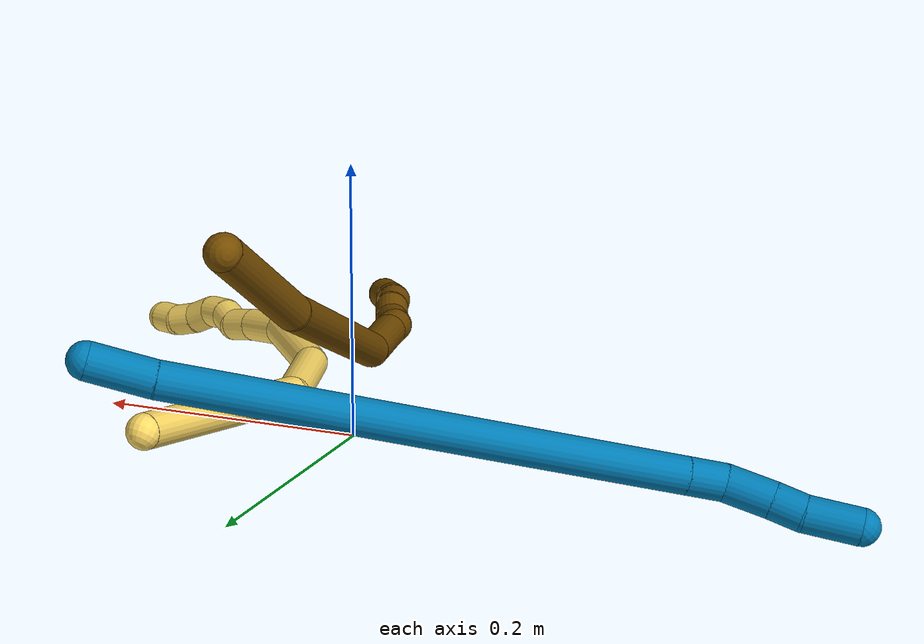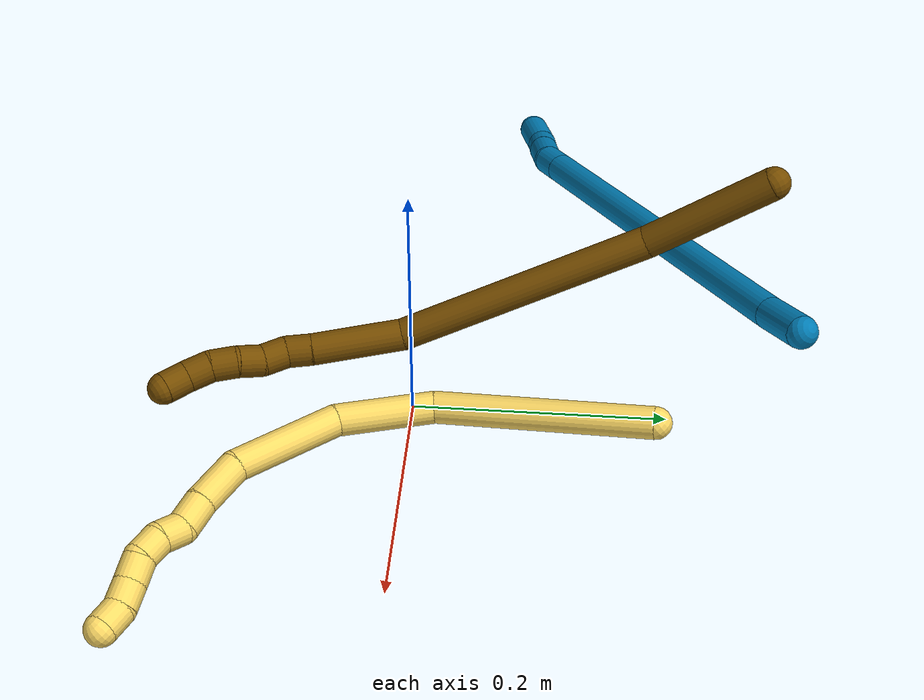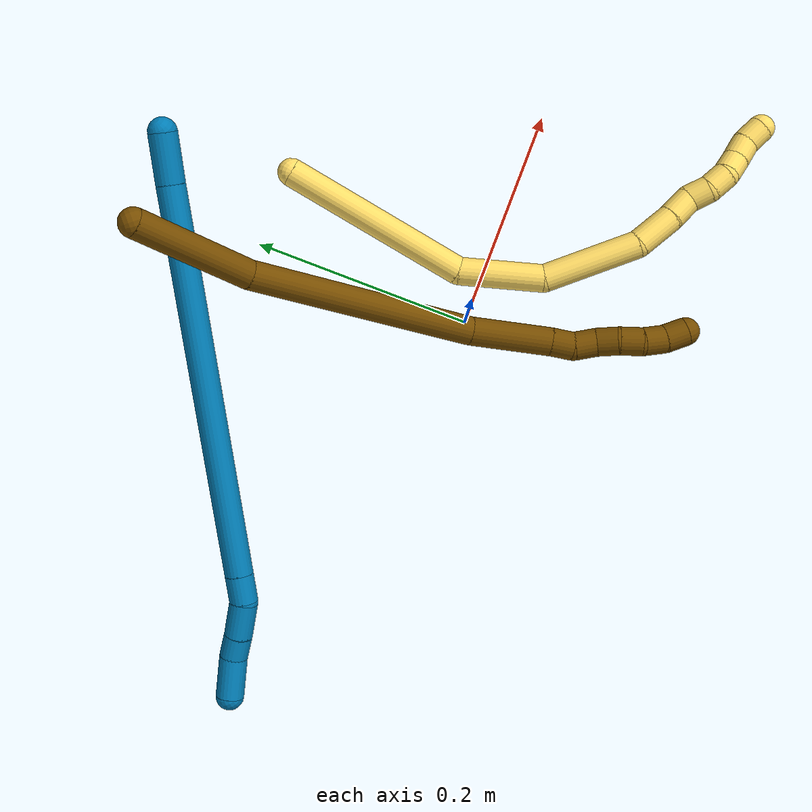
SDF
<sdf version="1.7">
 <world name="default">
  <model name="photoneo_s_sensor">
   <static>1</static>
   <pose>0 0 2 1.57079 1.57079 3.14159</pose>
   <link name="link">
    <inertial><mass>0.1</mass></inertial>
    <sensor name="sensor" type="depth">
     <update_rate>30</update_rate>
     <camera>
      <horizontal_fov>1.22</horizontal_fov>
      <image><width>1920</width><height>1200</height><format>B8G8R8</format></image>
      <clip><near>0.1</near><far>4</far></clip>
      <depth_camera><output>points</output></depth_camera>
     </camera>
     <plugin name="camera_plugin" filename="libgazebo_ros_depth_camera.so">
      <baseline>0.2</baseline>
      <alwaysOn>1</alwaysOn>
      <updateRate>0.0</updateRate>
      <cameraName>camera_ir</cameraName>
      <imageTopicName>/camera/color/image_raw</imageTopicName>
      <cameraInfoTopicName>/camera/color/camera_info</cameraInfoTopicName>
      <depthImageTopicName>/camera/depth/image_raw</depthImageTopicName>
      <depthImageCameraInfoTopicName>/camera/depth/camera_info</depthImageCameraInfoTopicName>
      <pointCloudTopicName>/camera/depth/points</pointCloudTopicName>
      <frameName>fr_optical</frameName>
      <pointCloudCutoff>0.1</pointCloudCutoff>
      <pointCloudCutoffMax>2.0</pointCloudCutoffMax>
      <distortionK1>0</distortionK1>
      <distortionK2>0</distortionK2>
      <distortionK3>0</distortionK3>
      <distortionT1>0</distortionT1>
      <distortionT2>0</distortionT2>
      <CxPrime>0</CxPrime>
      <Cx>0</Cx>
      <Cy>0</Cy>
      <focalLength>0</focalLength>
      <hackBaseline>0</hackBaseline>
     </plugin>
    </sensor>
   </link>
  </model>
  <model name="bin">
   <static>1</static>
   <link name="bottom">
    <collision name="collision-bottom">
     <pose>0 0 -0.01 0 -0 0</pose>
     <geometry><box><size>0.8 0.6 0.02</size></box></geometry>
     <surface>
      <friction><ode><mu>100</mu><mu2>100</mu2></ode></friction>
      <contact><collide_bitmask>65535</collide_bitmask></contact>
     </surface>
    </collision>
   </link>
   <link name="west_wall">
    <collision name="collision-west_wall">
     <pose>-0.41 0 0.1 0 -0 0</pose>
     <geometry><box><size>0.02 0.6 0.2</size></box></geometry>
     <surface>
      <friction><ode><mu>100</mu><mu2>100</mu2></ode></friction>
      <contact><collide_bitmask>65535</collide_bitmask></contact>
     </surface>
    </collision>
   </link>
   <link name="east_wall">
    <collision name="collision-east_wall">
     <pose>0.41 0 0.1 0 -0 0</pose>
     <geometry><box><size>0.02 0.6 0.2</size></box></geometry>
     <surface>
      <friction><ode><mu>100</mu><mu2>100</mu2></ode></friction>
      <contact><collide_bitmask>65535</collide_bitmask></contact>
     </surface>
    </collision>
   </link>
   <link name="south_wall">
    <collision name="collision-south_wall">
     <pose>0 -0.31 0.1 0 -0 0</pose>
     <geometry><box><size>0.8 0.02 0.2</size></box></geometry>
     <surface>
      <friction><ode><mu>100</mu><mu2>100</mu2></ode></friction>
      <contact><collide_bitmask>65535</collide_bitmask></contact>
     </surface>
    </collision>
   </link>
   <link name="north_wall">
    <collision name="collision-north_wall">
     <pose>0 0.31 0.1 0 -0 0</pose>
     <geometry><box><size>0.8 0.02 0.2</size></box></geometry>
     <surface>
      <friction><ode><mu>100</mu><mu2>100</mu2></ode></friction>
      <contact><collide_bitmask>65535</collide_bitmask></contact>
     </surface>
    </collision>
   </link>
  </model>
  <model name="5">
   <static>0</static>
   <link name="5">
    <collision name="collision-cylinder-e_1_1_4">
     <pose>-0.020936 -0.067035 0.048062 0.948774 -0.248572 -0.128127</pose>
     <geometry><cylinder><radius>0.0125</radius><length>0.1702</length></cylinder></geometry>
     <surface>
      <friction><ode><mu>1.16</mu><mu2>1.16</mu2><slip1>0</slip1><slip2>0</slip2></ode></friction>
      <contact><ode><kp>1e+06</kp><kd>1</kd><max_vel>0</max_vel><min_depth>0.001</min_depth></ode></contact>
     </surface>
    </collision>
    <visual name="visual-cylinder-e_1_1_4">
     <pose>-0.020936 -0.067035 0.048062 0.948774 -0.248572 -0.128127</pose>
     <geometry><cylinder><radius>0.0125</radius><length>0.1702</length></cylinder></geometry>
     <material><ambient>1 0.858824 0.4 1</ambient></material>
    </visual>
    <collision name="collision-cylinder-e_2_4_5">
     <pose>-0.034331 -0.164112 0.118336 0.934134 0.199176 0.100689</pose>
     <geometry><cylinder><radius>0.0125</radius><length>0.07623</length></cylinder></geometry>
     <surface>
      <friction><ode><mu>1.16</mu><mu2>1.16</mu2><slip1>0</slip1><slip2>0</slip2></ode></friction>
      <contact><ode><kp>1e+06</kp><kd>1</kd><max_vel>0</max_vel><min_depth>0.001</min_depth></ode></contact>
     </surface>
    </collision>
    <visual name="visual-cylinder-e_2_4_5">
     <pose>-0.034331 -0.164112 0.118336 0.934134 0.199176 0.100689</pose>
     <geometry><cylinder><radius>0.0125</radius><length>0.07623</length></cylinder></geometry>
     <material><ambient>1 0.858824 0.4 1</ambient></material>
    </visual>
    <collision name="collision-cylinder-e_3_5_6">
     <pose>-0.000812 -0.224843 0.159042 1.02844 0.627307 0.362449</pose>
     <geometry><cylinder><radius>0.0125</radius><length>0.088515</length></cylinder></geometry>
     <surface>
      <friction><ode><mu>1.16</mu><mu2>1.16</mu2><slip1>0</slip1><slip2>0</slip2></ode></friction>
      <contact><ode><kp>1e+06</kp><kd>1</kd><max_vel>0</max_vel><min_depth>0.001</min_depth></ode></contact>
     </surface>
    </collision>
    <visual name="visual-cylinder-e_3_5_6">
     <pose>-0.000812 -0.224843 0.159042 1.02844 0.627307 0.362449</pose>
     <geometry><cylinder><radius>0.0125</radius><length>0.088515</length></cylinder></geometry>
     <material><ambient>1 0.858824 0.4 1</ambient></material>
    </visual>
    <collision name="collision-cylinder-e_4_6_7">
     <pose>0.040338 -0.267928 0.179615 1.40469 0.878975 0.75738</pose>
     <geometry><cylinder><radius>0.0125</radius><length>0.039404</length></cylinder></geometry>
     <surface>
      <friction><ode><mu>1.16</mu><mu2>1.16</mu2><slip1>0</slip1><slip2>0</slip2></ode></friction>
      <contact><ode><kp>1e+06</kp><kd>1</kd><max_vel>0</max_vel><min_depth>0.001</min_depth></ode></contact>
     </surface>
    </collision>
    <visual name="visual-cylinder-e_4_6_7">
     <pose>0.040338 -0.267928 0.179615 1.40469 0.878975 0.75738</pose>
     <geometry><cylinder><radius>0.0125</radius><length>0.039404</length></cylinder></geometry>
     <material><ambient>1 0.858824 0.4 1</ambient></material>
    </visual>
    <collision name="collision-cylinder-e_5_7_8">
     <pose>0.065487 -0.287619 0.181528 1.59347 0.939271 0.957693</pose>
     <geometry><cylinder><radius>0.0125</radius><length>0.024722</length></cylinder></geometry>
     <surface>
      <friction><ode><mu>1.16</mu><mu2>1.16</mu2><slip1>0</slip1><slip2>0</slip2></ode></friction>
      <contact><ode><kp>1e+06</kp><kd>1</kd><max_vel>0</max_vel><min_depth>0.001</min_depth></ode></contact>
     </surface>
    </collision>
    <visual name="visual-cylinder-e_5_7_8">
     <pose>0.065487 -0.287619 0.181528 1.59347 0.939271 0.957693</pose>
     <geometry><cylinder><radius>0.0125</radius><length>0.024722</length></cylinder></geometry>
     <material><ambient>1 0.858824 0.4 1</ambient></material>
    </visual>
    <collision name="collision-cylinder-e_6_8_9">
     <pose>0.082352 -0.300594 0.186096 0.875971 0.750108 0.364651</pose>
     <geometry><cylinder><radius>0.0125</radius><length>0.020211</length></cylinder></geometry>
     <surface>
      <friction><ode><mu>1.16</mu><mu2>1.16</mu2><slip1>0</slip1><slip2>0</slip2></ode></friction>
      <contact><ode><kp>1e+06</kp><kd>1</kd><max_vel>0</max_vel><min_depth>0.001</min_depth></ode></contact>
     </surface>
    </collision>
    <visual name="visual-cylinder-e_6_8_9">
     <pose>0.082352 -0.300594 0.186096 0.875971 0.750108 0.364651</pose>
     <geometry><cylinder><radius>0.0125</radius><length>0.020211</length></cylinder></geometry>
     <material><ambient>1 0.858824 0.4 1</ambient></material>
    </visual>
    <collision name="collision-cylinder-e_7_9_10">
     <pose>0.097334 -0.312263 0.192102 1.36138 0.923036 0.765746</pose>
     <geometry><cylinder><radius>0.0125</radius><length>0.020296</length></cylinder></geometry>
     <surface>
      <friction><ode><mu>1.16</mu><mu2>1.16</mu2><slip1>0</slip1><slip2>0</slip2></ode></friction>
      <contact><ode><kp>1e+06</kp><kd>1</kd><max_vel>0</max_vel><min_depth>0.001</min_depth></ode></contact>
     </surface>
    </collision>
    <visual name="visual-cylinder-e_7_9_10">
     <pose>0.097334 -0.312263 0.192102 1.36138 0.923036 0.765746</pose>
     <geometry><cylinder><radius>0.0125</radius><length>0.020296</length></cylinder></geometry>
     <material><ambient>1 0.858824 0.4 1</ambient></material>
    </visual>
    <collision name="collision-cylinder-e_8_10_11">
     <pose>0.112864 -0.324273 0.190448 2.02336 0.83794 1.2371</pose>
     <geometry><cylinder><radius>0.0125</radius><length>0.020015</length></cylinder></geometry>
     <surface>
      <friction><ode><mu>1.16</mu><mu2>1.16</mu2><slip1>0</slip1><slip2>0</slip2></ode></friction>
      <contact><ode><kp>1e+06</kp><kd>1</kd><max_vel>0</max_vel><min_depth>0.001</min_depth></ode></contact>
     </surface>
    </collision>
    <visual name="visual-cylinder-e_8_10_11">
     <pose>0.112864 -0.324273 0.190448 2.02336 0.83794 1.2371</pose>
     <geometry><cylinder><radius>0.0125</radius><length>0.020015</length></cylinder></geometry>
     <material><ambient>1 0.858824 0.4 1</ambient></material>
    </visual>
    <collision name="collision-cylinder-e_9_11_12">
     <pose>0.128969 -0.33518 0.185461 1.96959 1.02176 1.4025</pose>
     <geometry><cylinder><radius>0.0125</radius><length>0.02032</length></cylinder></geometry>
     <surface>
      <friction><ode><mu>1.16</mu><mu2>1.16</mu2><slip1>0</slip1><slip2>0</slip2></ode></friction>
      <contact><ode><kp>1e+06</kp><kd>1</kd><max_vel>0</max_vel><min_depth>0.001</min_depth></ode></contact>
     </surface>
    </collision>
    <visual name="visual-cylinder-e_9_11_12">
     <pose>0.128969 -0.33518 0.185461 1.96959 1.02176 1.4025</pose>
     <geometry><cylinder><radius>0.0125</radius><length>0.02032</length></cylinder></geometry>
     <material><ambient>1 0.858824 0.4 1</ambient></material>
    </visual>
    <collision name="collision-cylinder-e_10_12_2">
     <pose>0.145947 -0.345577 0.184608 1.35541 0.974492 0.806225</pose>
     <geometry><cylinder><radius>0.0125</radius><length>0.020089</length></cylinder></geometry>
     <surface>
      <friction><ode><mu>1.16</mu><mu2>1.16</mu2><slip1>0</slip1><slip2>0</slip2></ode></friction>
      <contact><ode><kp>1e+06</kp><kd>1</kd><max_vel>0</max_vel><min_depth>0.001</min_depth></ode></contact>
     </surface>
    </collision>
    <visual name="visual-cylinder-e_10_12_2">
     <pose>0.145947 -0.345577 0.184608 1.35541 0.974492 0.806225</pose>
     <geometry><cylinder><radius>0.0125</radius><length>0.020089</length></cylinder></geometry>
     <material><ambient>1 0.858824 0.4 1</ambient></material>
    </visual>
    <collision name="collision-sphere-2">
     <pose>0.154258 -0.351087 0.185814 0 -0 0</pose>
     <geometry><sphere><radius>0.0125</radius></sphere></geometry>
     <surface>
      <friction><ode><mu>1.16</mu><mu2>1.16</mu2><slip1>0</slip1><slip2>0</slip2></ode></friction>
      <contact><ode><kp>1e+06</kp><kd>1</kd><max_vel>0</max_vel><min_depth>0.001</min_depth></ode></contact>
     </surface>
    </collision>
    <visual name="visual-sphere-2">
     <pose>0.154258 -0.351087 0.185814 0 -0 0</pose>
     <geometry><sphere><radius>0.0125</radius></sphere></geometry>
     <material><ambient>1 0.858824 0.4 1</ambient></material>
    </visual>
    <collision name="collision-sphere-12">
     <pose>0.137636 -0.340066 0.183402 0 -0 0</pose>
     <geometry><sphere><radius>0.0125</radius></sphere></geometry>
     <surface>
      <friction><ode><mu>1.16</mu><mu2>1.16</mu2><slip1>0</slip1><slip2>0</slip2></ode></friction>
      <contact><ode><kp>1e+06</kp><kd>1</kd><max_vel>0</max_vel><min_depth>0.001</min_depth></ode></contact>
     </surface>
    </collision>
    <visual name="visual-sphere-12">
     <pose>0.137636 -0.340066 0.183402 0 -0 0</pose>
     <geometry><sphere><radius>0.0125</radius></sphere></geometry>
     <material><ambient>1 0.858824 0.4 1</ambient></material>
    </visual>
    <collision name="collision-sphere-11">
     <pose>0.120303 -0.330294 0.18752 0 -0 0</pose>
     <geometry><sphere><radius>0.0125</radius></sphere></geometry>
     <surface>
      <friction><ode><mu>1.16</mu><mu2>1.16</mu2><slip1>0</slip1><slip2>0</slip2></ode></friction>
      <contact><ode><kp>1e+06</kp><kd>1</kd><max_vel>0</max_vel><min_depth>0.001</min_depth></ode></contact>
     </surface>
    </collision>
    <visual name="visual-sphere-11">
     <pose>0.120303 -0.330294 0.18752 0 -0 0</pose>
     <geometry><sphere><radius>0.0125</radius></sphere></geometry>
     <material><ambient>1 0.858824 0.4 1</ambient></material>
    </visual>
    <collision name="collision-sphere-10">
     <pose>0.105426 -0.318252 0.193375 0 -0 0</pose>
     <geometry><sphere><radius>0.0125</radius></sphere></geometry>
     <surface>
      <friction><ode><mu>1.16</mu><mu2>1.16</mu2><slip1>0</slip1><slip2>0</slip2></ode></friction>
      <contact><ode><kp>1e+06</kp><kd>1</kd><max_vel>0</max_vel><min_depth>0.001</min_depth></ode></contact>
     </surface>
    </collision>
    <visual name="visual-sphere-10">
     <pose>0.105426 -0.318252 0.193375 0 -0 0</pose>
     <geometry><sphere><radius>0.0125</radius></sphere></geometry>
     <material><ambient>1 0.858824 0.4 1</ambient></material>
    </visual>
    <collision name="collision-sphere-9">
     <pose>0.089241 -0.306273 0.190829 0 -0 0</pose>
     <geometry><sphere><radius>0.0125</radius></sphere></geometry>
     <surface>
      <friction><ode><mu>1.16</mu><mu2>1.16</mu2><slip1>0</slip1><slip2>0</slip2></ode></friction>
      <contact><ode><kp>1e+06</kp><kd>1</kd><max_vel>0</max_vel><min_depth>0.001</min_depth></ode></contact>
     </surface>
    </collision>
    <visual name="visual-sphere-9">
     <pose>0.089241 -0.306273 0.190829 0 -0 0</pose>
     <geometry><sphere><radius>0.0125</radius></sphere></geometry>
     <material><ambient>1 0.858824 0.4 1</ambient></material>
    </visual>
    <collision name="collision-sphere-4">
     <pose>-0.041873 -0.13407 0.096124 0 -0 0</pose>
     <geometry><sphere><radius>0.0125</radius></sphere></geometry>
     <surface>
      <friction><ode><mu>1.16</mu><mu2>1.16</mu2><slip1>0</slip1><slip2>0</slip2></ode></friction>
      <contact><ode><kp>1e+06</kp><kd>1</kd><max_vel>0</max_vel><min_depth>0.001</min_depth></ode></contact>
     </surface>
    </collision>
    <visual name="visual-sphere-4">
     <pose>-0.041873 -0.13407 0.096124 0 -0 0</pose>
     <geometry><sphere><radius>0.0125</radius></sphere></geometry>
     <material><ambient>1 0.858824 0.4 1</ambient></material>
    </visual>
    <collision name="collision-sphere-1">
     <geometry><sphere><radius>0.0125</radius></sphere></geometry>
     <surface>
      <friction><ode><mu>1.16</mu><mu2>1.16</mu2><slip1>0</slip1><slip2>0</slip2></ode></friction>
      <contact><ode><kp>1e+06</kp><kd>1</kd><max_vel>0</max_vel><min_depth>0.001</min_depth></ode></contact>
     </surface>
    </collision>
    <visual name="visual-sphere-1">
     <geometry><sphere><radius>0.0125</radius></sphere></geometry>
     <material><ambient>1 0.858824 0.4 1</ambient></material>
    </visual>
    <collision name="collision-sphere-8">
     <pose>0.075464 -0.294915 0.181362 0 -0 0</pose>
     <geometry><sphere><radius>0.0125</radius></sphere></geometry>
     <surface>
      <friction><ode><mu>1.16</mu><mu2>1.16</mu2><slip1>0</slip1><slip2>0</slip2></ode></friction>
      <contact><ode><kp>1e+06</kp><kd>1</kd><max_vel>0</max_vel><min_depth>0.001</min_depth></ode></contact>
     </surface>
    </collision>
    <visual name="visual-sphere-8">
     <pose>0.075464 -0.294915 0.181362 0 -0 0</pose>
     <geometry><sphere><radius>0.0125</radius></sphere></geometry>
     <material><ambient>1 0.858824 0.4 1</ambient></material>
    </visual>
    <collision name="collision-sphere-5">
     <pose>-0.02679 -0.194154 0.140548 0 -0 0</pose>
     <geometry><sphere><radius>0.0125</radius></sphere></geometry>
     <surface>
      <friction><ode><mu>1.16</mu><mu2>1.16</mu2><slip1>0</slip1><slip2>0</slip2></ode></friction>
      <contact><ode><kp>1e+06</kp><kd>1</kd><max_vel>0</max_vel><min_depth>0.001</min_depth></ode></contact>
     </surface>
    </collision>
    <visual name="visual-sphere-5">
     <pose>-0.02679 -0.194154 0.140548 0 -0 0</pose>
     <geometry><sphere><radius>0.0125</radius></sphere></geometry>
     <material><ambient>1 0.858824 0.4 1</ambient></material>
    </visual>
    <collision name="collision-sphere-6">
     <pose>0.025166 -0.255532 0.177537 0 -0 0</pose>
     <geometry><sphere><radius>0.0125</radius></sphere></geometry>
     <surface>
      <friction><ode><mu>1.16</mu><mu2>1.16</mu2><slip1>0</slip1><slip2>0</slip2></ode></friction>
      <contact><ode><kp>1e+06</kp><kd>1</kd><max_vel>0</max_vel><min_depth>0.001</min_depth></ode></contact>
     </surface>
    </collision>
    <visual name="visual-sphere-6">
     <pose>0.025166 -0.255532 0.177537 0 -0 0</pose>
     <geometry><sphere><radius>0.0125</radius></sphere></geometry>
     <material><ambient>1 0.858824 0.4 1</ambient></material>
    </visual>
    <collision name="collision-sphere-7">
     <pose>0.05551 -0.280324 0.181693 0 -0 0</pose>
     <geometry><sphere><radius>0.0125</radius></sphere></geometry>
     <surface>
      <friction><ode><mu>1.16</mu><mu2>1.16</mu2><slip1>0</slip1><slip2>0</slip2></ode></friction>
      <contact><ode><kp>1e+06</kp><kd>1</kd><max_vel>0</max_vel><min_depth>0.001</min_depth></ode></contact>
     </surface>
    </collision>
    <visual name="visual-sphere-7">
     <pose>0.05551 -0.280324 0.181693 0 -0 0</pose>
     <geometry><sphere><radius>0.0125</radius></sphere></geometry>
     <material><ambient>1 0.858824 0.4 1</ambient></material>
    </visual>
    <inertial>
     <pose>0.016815 -0.188291 0.123585 0 -0 0</pose>
     <mass>0.5</mass>
     <inertia>
      <ixx>0.000482</ixx>
      <ixy>0</ixy>
      <ixz>0</ixz>
      <iyy>0.000277</iyy>
      <iyz>0</iyz>
      <izz>0.000473</izz>
     </inertia>
    </inertial>
   </link>
   <pose>0.064183 0.188214 0.053656 0.685052 -0.228944 0.071753</pose>
  </model>
  <model name="9">
   <static>0</static>
   <link name="9">
    <collision name="collision-cylinder-e_1_1_4">
     <pose>-0.009498 -0.007664 0.017968 0.40316 -0.452553 -0.094024</pose>
     <geometry><cylinder><radius>0.0125</radius><length>0.043441</length></cylinder></geometry>
     <surface>
      <friction><ode><mu>1.16</mu><mu2>1.16</mu2><slip1>0</slip1><slip2>0</slip2></ode></friction>
      <contact><ode><kp>1e+06</kp><kd>1</kd><max_vel>0</max_vel><min_depth>0.001</min_depth></ode></contact>
     </surface>
    </collision>
    <visual name="visual-cylinder-e_1_1_4">
     <pose>-0.009498 -0.007664 0.017968 0.40316 -0.452553 -0.094024</pose>
     <geometry><cylinder><radius>0.0125</radius><length>0.043441</length></cylinder></geometry>
     <material><ambient>0 0.490196 0.709804 1</ambient></material>
    </visual>
    <collision name="collision-cylinder-e_2_4_5">
     <pose>-0.10602 -0.070263 0.171524 0.384953 -0.536633 -0.107066</pose>
     <geometry><cylinder><radius>0.0125</radius><length>0.340443</length></cylinder></geometry>
     <surface>
      <friction><ode><mu>1.16</mu><mu2>1.16</mu2><slip1>0</slip1><slip2>0</slip2></ode></friction>
      <contact><ode><kp>1e+06</kp><kd>1</kd><max_vel>0</max_vel><min_depth>0.001</min_depth></ode></contact>
     </surface>
    </collision>
    <visual name="visual-cylinder-e_2_4_5">
     <pose>-0.10602 -0.070263 0.171524 0.384953 -0.536633 -0.107066</pose>
     <geometry><cylinder><radius>0.0125</radius><length>0.340443</length></cylinder></geometry>
     <material><ambient>0 0.490196 0.709804 1</ambient></material>
    </visual>
    <collision name="collision-cylinder-e_3_5_6">
     <pose>-0.19955 -0.129308 0.317254 0.384934 -0.536294 -0.10699</pose>
     <geometry><cylinder><radius>0.0125</radius><length>0.025462</length></cylinder></geometry>
     <surface>
      <friction><ode><mu>1.16</mu><mu2>1.16</mu2><slip1>0</slip1><slip2>0</slip2></ode></friction>
      <contact><ode><kp>1e+06</kp><kd>1</kd><max_vel>0</max_vel><min_depth>0.001</min_depth></ode></contact>
     </surface>
    </collision>
    <visual name="visual-cylinder-e_3_5_6">
     <pose>-0.19955 -0.129308 0.317254 0.384934 -0.536294 -0.10699</pose>
     <geometry><cylinder><radius>0.0125</radius><length>0.025462</length></cylinder></geometry>
     <material><ambient>0 0.490196 0.709804 1</ambient></material>
    </visual>
    <collision name="collision-cylinder-e_4_6_7">
     <pose>-0.211804 -0.143233 0.338833 0.709267 -0.364411 -0.136239</pose>
     <geometry><cylinder><radius>0.0125</radius><length>0.032259</length></cylinder></geometry>
     <surface>
      <friction><ode><mu>1.16</mu><mu2>1.16</mu2><slip1>0</slip1><slip2>0</slip2></ode></friction>
      <contact><ode><kp>1e+06</kp><kd>1</kd><max_vel>0</max_vel><min_depth>0.001</min_depth></ode></contact>
     </surface>
    </collision>
    <visual name="visual-cylinder-e_4_6_7">
     <pose>-0.211804 -0.143233 0.338833 0.709267 -0.364411 -0.136239</pose>
     <geometry><cylinder><radius>0.0125</radius><length>0.032259</length></cylinder></geometry>
     <material><ambient>0 0.490196 0.709804 1</ambient></material>
    </visual>
    <collision name="collision-cylinder-e_5_7_8">
     <pose>-0.22087 -0.159903 0.357651 0.748403 -0.318104 -0.125819</pose>
     <geometry><cylinder><radius>0.0125</radius><length>0.021212</length></cylinder></geometry>
     <surface>
      <friction><ode><mu>1.16</mu><mu2>1.16</mu2><slip1>0</slip1><slip2>0</slip2></ode></friction>
      <contact><ode><kp>1e+06</kp><kd>1</kd><max_vel>0</max_vel><min_depth>0.001</min_depth></ode></contact>
     </surface>
    </collision>
    <visual name="visual-cylinder-e_5_7_8">
     <pose>-0.22087 -0.159903 0.357651 0.748403 -0.318104 -0.125819</pose>
     <geometry><cylinder><radius>0.0125</radius><length>0.021212</length></cylinder></geometry>
     <material><ambient>0 0.490196 0.709804 1</ambient></material>
    </visual>
    <collision name="collision-cylinder-e_6_8_2">
     <pose>-0.233009 -0.17696 0.377828 0.673145 -0.49444 -0.176153</pose>
     <geometry><cylinder><radius>0.0125</radius><length>0.037183</length></cylinder></geometry>
     <surface>
      <friction><ode><mu>1.16</mu><mu2>1.16</mu2><slip1>0</slip1><slip2>0</slip2></ode></friction>
      <contact><ode><kp>1e+06</kp><kd>1</kd><max_vel>0</max_vel><min_depth>0.001</min_depth></ode></contact>
     </surface>
    </collision>
    <visual name="visual-cylinder-e_6_8_2">
     <pose>-0.233009 -0.17696 0.377828 0.673145 -0.49444 -0.176153</pose>
     <geometry><cylinder><radius>0.0125</radius><length>0.037183</length></cylinder></geometry>
     <material><ambient>0 0.490196 0.709804 1</ambient></material>
    </visual>
    <collision name="collision-sphere-2">
     <pose>-0.241831 -0.187163 0.390623 0 -0 0</pose>
     <geometry><sphere><radius>0.0125</radius></sphere></geometry>
     <surface>
      <friction><ode><mu>1.16</mu><mu2>1.16</mu2><slip1>0</slip1><slip2>0</slip2></ode></friction>
      <contact><ode><kp>1e+06</kp><kd>1</kd><max_vel>0</max_vel><min_depth>0.001</min_depth></ode></contact>
     </surface>
    </collision>
    <visual name="visual-sphere-2">
     <pose>-0.241831 -0.187163 0.390623 0 -0 0</pose>
     <geometry><sphere><radius>0.0125</radius></sphere></geometry>
     <material><ambient>0 0.490196 0.709804 1</ambient></material>
    </visual>
    <collision name="collision-sphere-4">
     <pose>-0.018995 -0.015327 0.035936 0 -0 0</pose>
     <geometry><sphere><radius>0.0125</radius></sphere></geometry>
     <surface>
      <friction><ode><mu>1.16</mu><mu2>1.16</mu2><slip1>0</slip1><slip2>0</slip2></ode></friction>
      <contact><ode><kp>1e+06</kp><kd>1</kd><max_vel>0</max_vel><min_depth>0.001</min_depth></ode></contact>
     </surface>
    </collision>
    <visual name="visual-sphere-4">
     <pose>-0.018995 -0.015327 0.035936 0 -0 0</pose>
     <geometry><sphere><radius>0.0125</radius></sphere></geometry>
     <material><ambient>0 0.490196 0.709804 1</ambient></material>
    </visual>
    <collision name="collision-sphere-1">
     <geometry><sphere><radius>0.0125</radius></sphere></geometry>
     <surface>
      <friction><ode><mu>1.16</mu><mu2>1.16</mu2><slip1>0</slip1><slip2>0</slip2></ode></friction>
      <contact><ode><kp>1e+06</kp><kd>1</kd><max_vel>0</max_vel><min_depth>0.001</min_depth></ode></contact>
     </surface>
    </collision>
    <visual name="visual-sphere-1">
     <geometry><sphere><radius>0.0125</radius></sphere></geometry>
     <material><ambient>0 0.490196 0.709804 1</ambient></material>
    </visual>
    <collision name="collision-sphere-8">
     <pose>-0.224187 -0.166758 0.365033 0 -0 0</pose>
     <geometry><sphere><radius>0.0125</radius></sphere></geometry>
     <surface>
      <friction><ode><mu>1.16</mu><mu2>1.16</mu2><slip1>0</slip1><slip2>0</slip2></ode></friction>
      <contact><ode><kp>1e+06</kp><kd>1</kd><max_vel>0</max_vel><min_depth>0.001</min_depth></ode></contact>
     </surface>
    </collision>
    <visual name="visual-sphere-8">
     <pose>-0.224187 -0.166758 0.365033 0 -0 0</pose>
     <geometry><sphere><radius>0.0125</radius></sphere></geometry>
     <material><ambient>0 0.490196 0.709804 1</ambient></material>
    </visual>
    <collision name="collision-sphere-5">
     <pose>-0.193045 -0.125199 0.307112 0 -0 0</pose>
     <geometry><sphere><radius>0.0125</radius></sphere></geometry>
     <surface>
      <friction><ode><mu>1.16</mu><mu2>1.16</mu2><slip1>0</slip1><slip2>0</slip2></ode></friction>
      <contact><ode><kp>1e+06</kp><kd>1</kd><max_vel>0</max_vel><min_depth>0.001</min_depth></ode></contact>
     </surface>
    </collision>
    <visual name="visual-sphere-5">
     <pose>-0.193045 -0.125199 0.307112 0 -0 0</pose>
     <geometry><sphere><radius>0.0125</radius></sphere></geometry>
     <material><ambient>0 0.490196 0.709804 1</ambient></material>
    </visual>
    <collision name="collision-sphere-6">
     <pose>-0.206055 -0.133418 0.327397 0 -0 0</pose>
     <geometry><sphere><radius>0.0125</radius></sphere></geometry>
     <surface>
      <friction><ode><mu>1.16</mu><mu2>1.16</mu2><slip1>0</slip1><slip2>0</slip2></ode></friction>
      <contact><ode><kp>1e+06</kp><kd>1</kd><max_vel>0</max_vel><min_depth>0.001</min_depth></ode></contact>
     </surface>
    </collision>
    <visual name="visual-sphere-6">
     <pose>-0.206055 -0.133418 0.327397 0 -0 0</pose>
     <geometry><sphere><radius>0.0125</radius></sphere></geometry>
     <material><ambient>0 0.490196 0.709804 1</ambient></material>
    </visual>
    <collision name="collision-sphere-7">
     <pose>-0.217552 -0.153048 0.350269 0 -0 0</pose>
     <geometry><sphere><radius>0.0125</radius></sphere></geometry>
     <surface>
      <friction><ode><mu>1.16</mu><mu2>1.16</mu2><slip1>0</slip1><slip2>0</slip2></ode></friction>
      <contact><ode><kp>1e+06</kp><kd>1</kd><max_vel>0</max_vel><min_depth>0.001</min_depth></ode></contact>
     </surface>
    </collision>
    <visual name="visual-sphere-7">
     <pose>-0.217552 -0.153048 0.350269 0 -0 0</pose>
     <geometry><sphere><radius>0.0125</radius></sphere></geometry>
     <material><ambient>0 0.490196 0.709804 1</ambient></material>
    </visual>
    <inertial>
     <pose>-0.123538 -0.084277 0.199636 0 -0 0</pose>
     <mass>0.5</mass>
     <inertia>
      <ixx>0.002516</ixx>
      <ixy>0</ixy>
      <ixz>0</ixz>
      <iyy>0.002809</iyy>
      <iyz>0</iyz>
      <izz>0.002804</izz>
     </inertia>
    </inertial>
   </link>
   <pose>0.04558 0.287202 0.131929 3.01769 0.787756 0.741952</pose>
  </model>
  <model name="12">
   <static>0</static>
   <link name="12">
    <collision name="collision-cylinder-e_1_1_4">
     <pose>-0.008467 -0.037617 -0.03663 2.3429 -0.159879 -0.375184</pose>
     <geometry><cylinder><radius>0.0125</radius><length>0.106368</length></cylinder></geometry>
     <surface>
      <friction><ode><mu>1.16</mu><mu2>1.16</mu2><slip1>0</slip1><slip2>0</slip2></ode></friction>
      <contact><ode><kp>1e+06</kp><kd>1</kd><max_vel>0</max_vel><min_depth>0.001</min_depth></ode></contact>
     </surface>
    </collision>
    <visual name="visual-cylinder-e_1_1_4">
     <pose>-0.008467 -0.037617 -0.03663 2.3429 -0.159879 -0.375184</pose>
     <geometry><cylinder><radius>0.0125</radius><length>0.106368</length></cylinder></geometry>
     <material><ambient>0.466667 0.301961 0 1</ambient></material>
    </visual>
    <collision name="collision-cylinder-e_2_4_5">
     <pose>-0.019017 -0.132572 -0.156468 2.53823 -0.020612 -0.066216</pose>
     <geometry><cylinder><radius>0.0125</radius><length>0.202143</length></cylinder></geometry>
     <surface>
      <friction><ode><mu>1.16</mu><mu2>1.16</mu2><slip1>0</slip1><slip2>0</slip2></ode></friction>
      <contact><ode><kp>1e+06</kp><kd>1</kd><max_vel>0</max_vel><min_depth>0.001</min_depth></ode></contact>
     </surface>
    </collision>
    <visual name="visual-cylinder-e_2_4_5">
     <pose>-0.019017 -0.132572 -0.156468 2.53823 -0.020612 -0.066216</pose>
     <geometry><cylinder><radius>0.0125</radius><length>0.202143</length></cylinder></geometry>
     <material><ambient>0.466667 0.301961 0 1</ambient></material>
    </visual>
    <collision name="collision-cylinder-e_3_5_6">
     <pose>-0.012156 -0.203986 -0.271062 2.72001 0.254368 1.07733</pose>
     <geometry><cylinder><radius>0.0125</radius><length>0.071084</length></cylinder></geometry>
     <surface>
      <friction><ode><mu>1.16</mu><mu2>1.16</mu2><slip1>0</slip1><slip2>0</slip2></ode></friction>
      <contact><ode><kp>1e+06</kp><kd>1</kd><max_vel>0</max_vel><min_depth>0.001</min_depth></ode></contact>
     </surface>
    </collision>
    <visual name="visual-cylinder-e_3_5_6">
     <pose>-0.012156 -0.203986 -0.271062 2.72001 0.254368 1.07733</pose>
     <geometry><cylinder><radius>0.0125</radius><length>0.071084</length></cylinder></geometry>
     <material><ambient>0.466667 0.301961 0 1</ambient></material>
    </visual>
    <collision name="collision-cylinder-e_4_6_7">
     <pose>-0.000149 -0.222474 -0.310933 2.66201 0.310071 1.13753</pose>
     <geometry><cylinder><radius>0.0125</radius><length>0.020084</length></cylinder></geometry>
     <surface>
      <friction><ode><mu>1.16</mu><mu2>1.16</mu2><slip1>0</slip1><slip2>0</slip2></ode></friction>
      <contact><ode><kp>1e+06</kp><kd>1</kd><max_vel>0</max_vel><min_depth>0.001</min_depth></ode></contact>
     </surface>
    </collision>
    <visual name="visual-cylinder-e_4_6_7">
     <pose>-0.000149 -0.222474 -0.310933 2.66201 0.310071 1.13753</pose>
     <geometry><cylinder><radius>0.0125</radius><length>0.020084</length></cylinder></geometry>
     <material><ambient>0.466667 0.301961 0 1</ambient></material>
    </visual>
    <collision name="collision-cylinder-e_5_7_8">
     <pose>0.004537 -0.228091 -0.329373 3.02122 0.16028 1.85415</pose>
     <geometry><cylinder><radius>0.0125</radius><length>0.020317</length></cylinder></geometry>
     <surface>
      <friction><ode><mu>1.16</mu><mu2>1.16</mu2><slip1>0</slip1><slip2>0</slip2></ode></friction>
      <contact><ode><kp>1e+06</kp><kd>1</kd><max_vel>0</max_vel><min_depth>0.001</min_depth></ode></contact>
     </surface>
    </collision>
    <visual name="visual-cylinder-e_5_7_8">
     <pose>0.004537 -0.228091 -0.329373 3.02122 0.16028 1.85415</pose>
     <geometry><cylinder><radius>0.0125</radius><length>0.020317</length></cylinder></geometry>
     <material><ambient>0.466667 0.301961 0 1</ambient></material>
    </visual>
    <collision name="collision-cylinder-e_6_8_9">
     <pose>0.010597 -0.230446 -0.348216 3.01282 0.459872 2.60402</pose>
     <geometry><cylinder><radius>0.0125</radius><length>0.020002</length></cylinder></geometry>
     <surface>
      <friction><ode><mu>1.16</mu><mu2>1.16</mu2><slip1>0</slip1><slip2>0</slip2></ode></friction>
      <contact><ode><kp>1e+06</kp><kd>1</kd><max_vel>0</max_vel><min_depth>0.001</min_depth></ode></contact>
     </surface>
    </collision>
    <visual name="visual-cylinder-e_6_8_9">
     <pose>0.010597 -0.230446 -0.348216 3.01282 0.459872 2.60402</pose>
     <geometry><cylinder><radius>0.0125</radius><length>0.020002</length></cylinder></geometry>
     <material><ambient>0.466667 0.301961 0 1</ambient></material>
    </visual>
    <collision name="collision-cylinder-e_7_9_10">
     <pose>0.017901 -0.234506 -0.366233 2.83318 0.290629 1.51056</pose>
     <geometry><cylinder><radius>0.0125</radius><length>0.02</length></cylinder></geometry>
     <surface>
      <friction><ode><mu>1.16</mu><mu2>1.16</mu2><slip1>0</slip1><slip2>0</slip2></ode></friction>
      <contact><ode><kp>1e+06</kp><kd>1</kd><max_vel>0</max_vel><min_depth>0.001</min_depth></ode></contact>
     </surface>
    </collision>
    <visual name="visual-cylinder-e_7_9_10">
     <pose>0.017901 -0.234506 -0.366233 2.83318 0.290629 1.51056</pose>
     <geometry><cylinder><radius>0.0125</radius><length>0.02</length></cylinder></geometry>
     <material><ambient>0.466667 0.301961 0 1</ambient></material>
    </visual>
    <collision name="collision-cylinder-e_8_10_11">
     <pose>0.021323 -0.239612 -0.385102 2.91963 0.055646 0.489462</pose>
     <geometry><cylinder><radius>0.0125</radius><length>0.020001</length></cylinder></geometry>
     <surface>
      <friction><ode><mu>1.16</mu><mu2>1.16</mu2><slip1>0</slip1><slip2>0</slip2></ode></friction>
      <contact><ode><kp>1e+06</kp><kd>1</kd><max_vel>0</max_vel><min_depth>0.001</min_depth></ode></contact>
     </surface>
    </collision>
    <visual name="visual-cylinder-e_8_10_11">
     <pose>0.021323 -0.239612 -0.385102 2.91963 0.055646 0.489462</pose>
     <geometry><cylinder><radius>0.0125</radius><length>0.020001</length></cylinder></geometry>
     <material><ambient>0.466667 0.301961 0 1</ambient></material>
    </visual>
    <collision name="collision-cylinder-e_9_11_2">
     <pose>0.022597 -0.241634 -0.404815 -3.12391 0.071839 -2.65917</pose>
     <geometry><cylinder><radius>0.0125</radius><length>0.020001</length></cylinder></geometry>
     <surface>
      <friction><ode><mu>1.16</mu><mu2>1.16</mu2><slip1>0</slip1><slip2>0</slip2></ode></friction>
      <contact><ode><kp>1e+06</kp><kd>1</kd><max_vel>0</max_vel><min_depth>0.001</min_depth></ode></contact>
     </surface>
    </collision>
    <visual name="visual-cylinder-e_9_11_2">
     <pose>0.022597 -0.241634 -0.404815 -3.12391 0.071839 -2.65917</pose>
     <geometry><cylinder><radius>0.0125</radius><length>0.020001</length></cylinder></geometry>
     <material><ambient>0.466667 0.301961 0 1</ambient></material>
    </visual>
    <collision name="collision-sphere-2">
     <pose>0.023315 -0.241457 -0.414788 0 -0 0</pose>
     <geometry><sphere><radius>0.0125</radius></sphere></geometry>
     <surface>
      <friction><ode><mu>1.16</mu><mu2>1.16</mu2><slip1>0</slip1><slip2>0</slip2></ode></friction>
      <contact><ode><kp>1e+06</kp><kd>1</kd><max_vel>0</max_vel><min_depth>0.001</min_depth></ode></contact>
     </surface>
    </collision>
    <visual name="visual-sphere-2">
     <pose>0.023315 -0.241457 -0.414788 0 -0 0</pose>
     <geometry><sphere><radius>0.0125</radius></sphere></geometry>
     <material><ambient>0.466667 0.301961 0 1</ambient></material>
    </visual>
    <collision name="collision-sphere-11">
     <pose>0.021879 -0.24181 -0.394842 0 -0 0</pose>
     <geometry><sphere><radius>0.0125</radius></sphere></geometry>
     <surface>
      <friction><ode><mu>1.16</mu><mu2>1.16</mu2><slip1>0</slip1><slip2>0</slip2></ode></friction>
      <contact><ode><kp>1e+06</kp><kd>1</kd><max_vel>0</max_vel><min_depth>0.001</min_depth></ode></contact>
     </surface>
    </collision>
    <visual name="visual-sphere-11">
     <pose>0.021879 -0.24181 -0.394842 0 -0 0</pose>
     <geometry><sphere><radius>0.0125</radius></sphere></geometry>
     <material><ambient>0.466667 0.301961 0 1</ambient></material>
    </visual>
    <collision name="collision-sphere-10">
     <pose>0.020767 -0.237414 -0.375362 0 -0 0</pose>
     <geometry><sphere><radius>0.0125</radius></sphere></geometry>
     <surface>
      <friction><ode><mu>1.16</mu><mu2>1.16</mu2><slip1>0</slip1><slip2>0</slip2></ode></friction>
      <contact><ode><kp>1e+06</kp><kd>1</kd><max_vel>0</max_vel><min_depth>0.001</min_depth></ode></contact>
     </surface>
    </collision>
    <visual name="visual-sphere-10">
     <pose>0.020767 -0.237414 -0.375362 0 -0 0</pose>
     <geometry><sphere><radius>0.0125</radius></sphere></geometry>
     <material><ambient>0.466667 0.301961 0 1</ambient></material>
    </visual>
    <collision name="collision-sphere-9">
     <pose>0.015035 -0.231597 -0.357104 0 -0 0</pose>
     <geometry><sphere><radius>0.0125</radius></sphere></geometry>
     <surface>
      <friction><ode><mu>1.16</mu><mu2>1.16</mu2><slip1>0</slip1><slip2>0</slip2></ode></friction>
      <contact><ode><kp>1e+06</kp><kd>1</kd><max_vel>0</max_vel><min_depth>0.001</min_depth></ode></contact>
     </surface>
    </collision>
    <visual name="visual-sphere-9">
     <pose>0.015035 -0.231597 -0.357104 0 -0 0</pose>
     <geometry><sphere><radius>0.0125</radius></sphere></geometry>
     <material><ambient>0.466667 0.301961 0 1</ambient></material>
    </visual>
    <collision name="collision-sphere-4">
     <pose>-0.016934 -0.075235 -0.07326 0 -0 0</pose>
     <geometry><sphere><radius>0.0125</radius></sphere></geometry>
     <surface>
      <friction><ode><mu>1.16</mu><mu2>1.16</mu2><slip1>0</slip1><slip2>0</slip2></ode></friction>
      <contact><ode><kp>1e+06</kp><kd>1</kd><max_vel>0</max_vel><min_depth>0.001</min_depth></ode></contact>
     </surface>
    </collision>
    <visual name="visual-sphere-4">
     <pose>-0.016934 -0.075235 -0.07326 0 -0 0</pose>
     <geometry><sphere><radius>0.0125</radius></sphere></geometry>
     <material><ambient>0.466667 0.301961 0 1</ambient></material>
    </visual>
    <collision name="collision-sphere-1">
     <geometry><sphere><radius>0.0125</radius></sphere></geometry>
     <surface>
      <friction><ode><mu>1.16</mu><mu2>1.16</mu2><slip1>0</slip1><slip2>0</slip2></ode></friction>
      <contact><ode><kp>1e+06</kp><kd>1</kd><max_vel>0</max_vel><min_depth>0.001</min_depth></ode></contact>
     </surface>
    </collision>
    <visual name="visual-sphere-1">
     <geometry><sphere><radius>0.0125</radius></sphere></geometry>
     <material><ambient>0.466667 0.301961 0 1</ambient></material>
    </visual>
    <collision name="collision-sphere-8">
     <pose>0.006158 -0.229295 -0.339329 0 -0 0</pose>
     <geometry><sphere><radius>0.0125</radius></sphere></geometry>
     <surface>
      <friction><ode><mu>1.16</mu><mu2>1.16</mu2><slip1>0</slip1><slip2>0</slip2></ode></friction>
      <contact><ode><kp>1e+06</kp><kd>1</kd><max_vel>0</max_vel><min_depth>0.001</min_depth></ode></contact>
     </surface>
    </collision>
    <visual name="visual-sphere-8">
     <pose>0.006158 -0.229295 -0.339329 0 -0 0</pose>
     <geometry><sphere><radius>0.0125</radius></sphere></geometry>
     <material><ambient>0.466667 0.301961 0 1</ambient></material>
    </visual>
    <collision name="collision-sphere-5">
     <pose>-0.0211 -0.18991 -0.239676 0 -0 0</pose>
     <geometry><sphere><radius>0.0125</radius></sphere></geometry>
     <surface>
      <friction><ode><mu>1.16</mu><mu2>1.16</mu2><slip1>0</slip1><slip2>0</slip2></ode></friction>
      <contact><ode><kp>1e+06</kp><kd>1</kd><max_vel>0</max_vel><min_depth>0.001</min_depth></ode></contact>
     </surface>
    </collision>
    <visual name="visual-sphere-5">
     <pose>-0.0211 -0.18991 -0.239676 0 -0 0</pose>
     <geometry><sphere><radius>0.0125</radius></sphere></geometry>
     <material><ambient>0.466667 0.301961 0 1</ambient></material>
    </visual>
    <collision name="collision-sphere-6">
     <pose>-0.003213 -0.218062 -0.302448 0 -0 0</pose>
     <geometry><sphere><radius>0.0125</radius></sphere></geometry>
     <surface>
      <friction><ode><mu>1.16</mu><mu2>1.16</mu2><slip1>0</slip1><slip2>0</slip2></ode></friction>
      <contact><ode><kp>1e+06</kp><kd>1</kd><max_vel>0</max_vel><min_depth>0.001</min_depth></ode></contact>
     </surface>
    </collision>
    <visual name="visual-sphere-6">
     <pose>-0.003213 -0.218062 -0.302448 0 -0 0</pose>
     <geometry><sphere><radius>0.0125</radius></sphere></geometry>
     <material><ambient>0.466667 0.301961 0 1</ambient></material>
    </visual>
    <collision name="collision-sphere-7">
     <pose>0.002915 -0.226887 -0.319417 0 -0 0</pose>
     <geometry><sphere><radius>0.0125</radius></sphere></geometry>
     <surface>
      <friction><ode><mu>1.16</mu><mu2>1.16</mu2><slip1>0</slip1><slip2>0</slip2></ode></friction>
      <contact><ode><kp>1e+06</kp><kd>1</kd><max_vel>0</max_vel><min_depth>0.001</min_depth></ode></contact>
     </surface>
    </collision>
    <visual name="visual-sphere-7">
     <pose>0.002915 -0.226887 -0.319417 0 -0 0</pose>
     <geometry><sphere><radius>0.0125</radius></sphere></geometry>
     <material><ambient>0.466667 0.301961 0 1</ambient></material>
    </visual>
    <inertial>
     <pose>-0.008142 -0.146654 -0.195638 0 -0 0</pose>
     <mass>0.5</mass>
     <inertia>
      <ixx>0.000755</ixx>
      <ixy>0</ixy>
      <ixz>0</ixz>
      <iyy>-0.000715</iyy>
      <iyz>0</iyz>
      <izz>0.000472</izz>
     </inertia>
    </inertial>
   </link>
   <pose>-0.038404 0.26475 0.202114 1.2511 -1.08466 -2.13164</pose>
  </model>
 </world>
</sdf>
